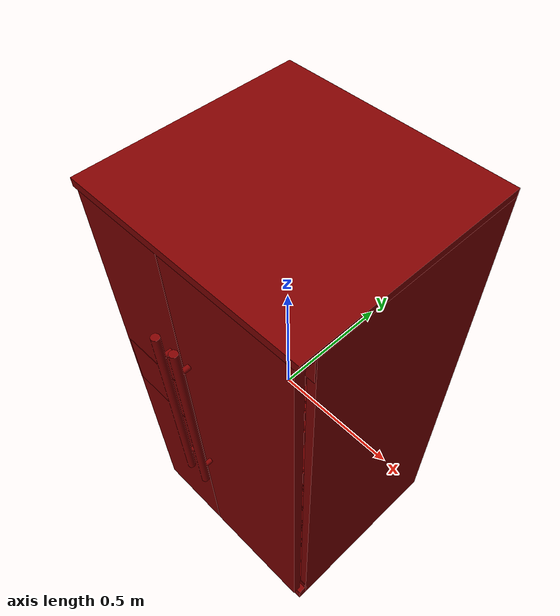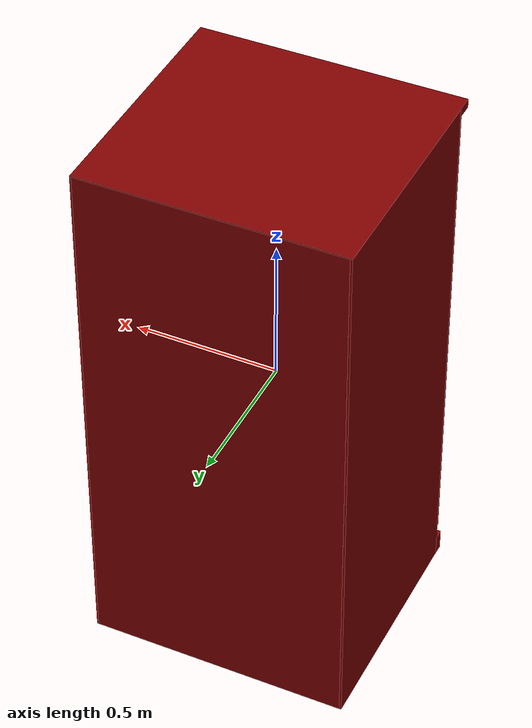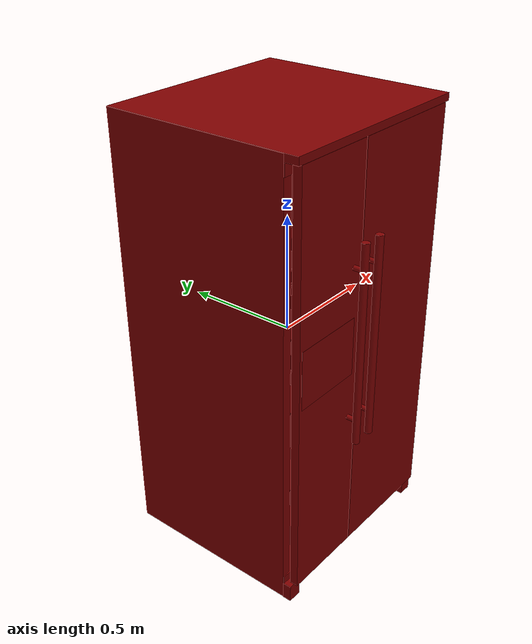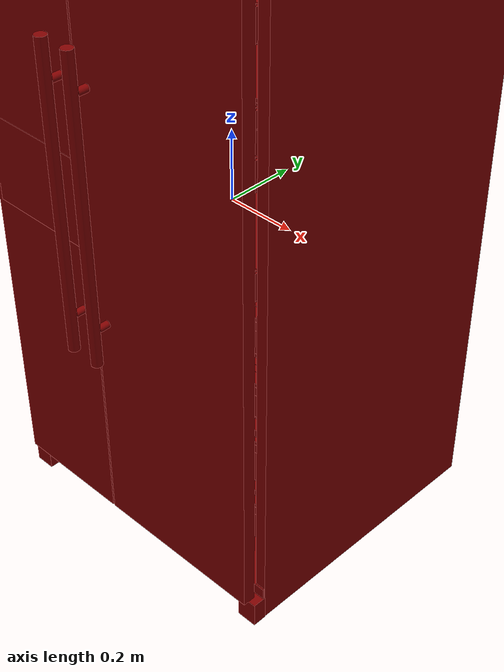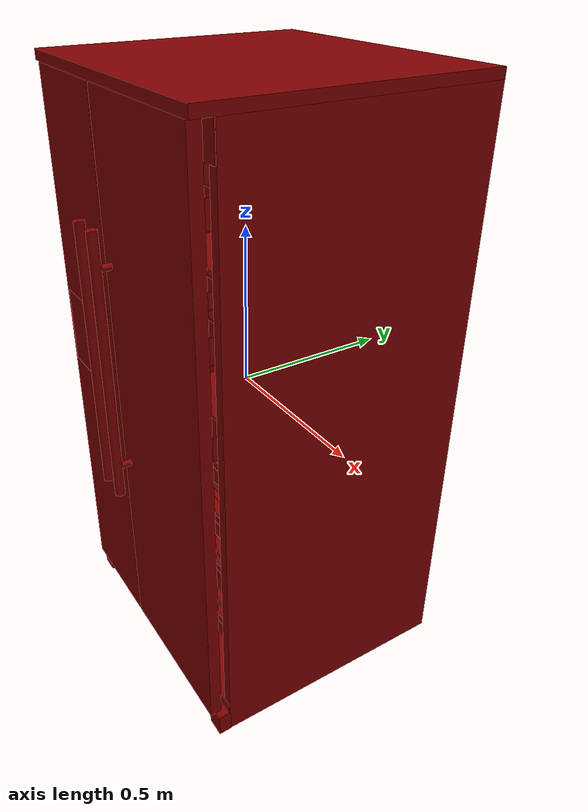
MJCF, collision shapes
<?xml version='1.0' encoding='UTF-8'?>
<mujoco model="model">
  <option timestep="0.002" gravity="0.0 0.0 -9.81"/>
  <compiler angle="radian"/>
  <asset>
    <mesh file="visuals/freezer_door.obj" name="fridge_door_vis"/>
    <mesh file="visuals/freezer_door_Clear.obj" name="fridge_door_Clear_vis"/>
    <mesh file="visuals/freezer_drawer0.obj" name="fridge_drawer0_vis"/>
    <mesh file="visuals/freezer_drawer1.obj" name="fridge_drawer1_vis"/>
    <mesh file="visuals/freezer_drawer2.obj" name="fridge_drawer2_vis"/>
    <mesh file="visuals/freezer_drawer3.obj" name="fridge_drawer3_vis"/>
    <mesh file="visuals/fridge_door.obj" name="freezer_door_vis"/>
    <mesh file="visuals/fridge_door_Clear.obj" name="freezer_door_Clear_vis"/>
    <mesh file="visuals/Body001.obj" name="Body001_vis"/>
    <mesh file="visuals/Body001_Clear.obj" name="Body001_Clear_vis"/>
    <texture file="visuals/T_BC001.png" name="Body001_material" type="2d"/>
    <material name="Body001_material" rgba="1 1 1 1.0" texture="Body001_material" shininess="0.7228040099143982" specular="0.3103448502657381"/>
    <texture file="visuals/T_BC001.png" name="fridge_door_material" type="2d"/>
    <material name="fridge_door_material" rgba="1 1 1 1.0" texture="fridge_door_material" shininess="0.7228040099143982" specular="0.3103448502657381"/>
    <material name="fridge_door_Clear_material" rgba="0.6930067539215088 0.6930026412010193 0.717366099357605 0.699999988079071" shininess="0.5" specular="0.3103448502657381"/>
    <texture file="visuals/T_BC001.png" name="fridge_drawer0_material" type="2d"/>
    <material name="fridge_drawer0_material" rgba="1 1 1 1.0" texture="fridge_drawer0_material" shininess="0.7228040099143982" specular="0.3103448502657381"/>
    <texture file="visuals/T_BC001.png" name="fridge_drawer1_material" type="2d"/>
    <material name="fridge_drawer1_material" rgba="1 1 1 1.0" texture="fridge_drawer1_material" shininess="0.7228040099143982" specular="0.3103448502657381"/>
    <texture file="visuals/T_BC001.png" name="fridge_drawer2_material" type="2d"/>
    <material name="fridge_drawer2_material" rgba="1 1 1 1.0" texture="fridge_drawer2_material" shininess="0.7228040099143982" specular="0.3103448502657381"/>
    <texture file="visuals/T_BC001.png" name="fridge_drawer3_material" type="2d"/>
    <material name="fridge_drawer3_material" rgba="1 1 1 1.0" texture="fridge_drawer3_material" shininess="0.7228040099143982" specular="0.3103448502657381"/>
    <texture file="visuals/T_BC001.png" name="freezer_door_material" type="2d"/>
    <material name="freezer_door_material" rgba="1 1 1 1.0" texture="freezer_door_material" shininess="0.7228040099143982" specular="0.3103448502657381"/>
    <material name="freezer_door_Clear_material" rgba="0.6930067539215088 0.6930026412010193 0.717366099357605 0.699999988079071" shininess="0.5" specular="0.3103448502657381"/>
    <material name="Body001_Clear_material" rgba="0.6930067539215088 0.6930026412010193 0.717366099357605 0.699999988079071" shininess="0.5" specular="0.3103448502657381"/>
  </asset>
  <default>
    <default class="visual">
      <geom conaffinity="0" contype="0" group="1" type="mesh"/>
    </default>
    <default class="collision">
      <geom group="0" rgba="0.5 0 0 0.5"/>
    </default>
    <default class="spawn">
      <geom group="0" rgba="1 1 1 0.5" contype="0" conaffinity="0"/>
      <site group="0" rgba="1 1 1 0.5"/>
    </default>
    <default class="region">
      <geom group="1" conaffinity="0" contype="0" rgba="0 1 0 0"/>
    </default>
  </default>
  <worldbody>
    <body>
      <body name="object">
        <geom mesh="Body001_vis" type="mesh" solimp="0.998 0.998 0.001" solref="0.001 1" friction="0.95 0.3 0.1" class="visual" material="Body001_material"/>
        <geom class="collision" type="box" pos="0.18959122896194458 0.05818253755569458 0.8799152970314026" size="0.2595243453979492 0.3990790545940399 0.05621635541319847" quat="1.0 0.0 0.0 0.0"/>
        <geom class="collision" type="box" pos="0.0009982611518353224 0.44190189242362976 0.00017643740284256637" size="0.44811761379241943 0.01804446615278721 0.9475670456886292" quat="1.0 0.0 0.0 0.0"/>
        <geom class="collision" type="box" pos="0.4390265643596649 0.058436278253793716 0.00017643740284256637" size="0.0159467700868845 0.40140703320503235 0.9475670456886292" quat="1.0 0.0 0.0 0.0"/>
        <geom class="collision" type="box" pos="-0.4349925220012665 0.058436278253793716 0.00017643740284256637" size="0.01999860256910324 0.40132734179496765 0.9475670456886292" quat="1.0 0.0 0.0 0.0"/>
        <geom class="collision" type="box" pos="2.7887028409168124e-05 0.02747405506670475 0.9345158338546753" size="0.4549593925476074 0.42980894446372986 0.0151698412373662" quat="1.0 0.0 0.0 0.0"/>
        <geom class="collision" type="box" pos="-0.07548540085554123 0.05183691903948784 -0.006091429386287928" size="0.024131251499056816 0.3987886309623718 0.9200621247291565" quat="1.0 0.0 0.0 0.0"/>
        <geom class="collision" type="box" pos="-0.2629220485687256 0.09088116884231567 -0.5183898210525513" size="0.173197403550148 0.35974442958831787 0.004941131919622421" quat="1.0 0.0 0.0 0.0"/>
        <geom class="collision" type="box" pos="0.18642672896385193 0.1124727874994278 -0.21493640542030334" size="0.24038416147232056 0.2969996929168701 0.010787518694996834" quat="1.0 0.0 0.0 0.0"/>
        <geom class="collision" type="box" pos="0.18693335354328156 0.07380534708499908 -0.4124906063079834" size="0.24089078605175018 0.3356671631336212 0.011015924625098705" quat="1.0 0.0 0.0 0.0"/>
        <geom class="collision" type="box" pos="0.18693335354328156 0.07380534708499908 -0.6208384037017822" size="0.24089078605175018 0.3356671631336212 0.009156123735010624" quat="1.0 0.0 0.0 0.0"/>
        <geom class="collision" type="box" pos="0.41454946994781494 0.07198478281497955 0.008693575859069824" size="0.009805545210838318 0.2760608196258545 0.005919968243688345" quat="1.0 0.0 0.0 0.0"/>
        <geom class="collision" type="box" pos="-0.04574844613671303 0.07198478281497955 0.008693575859069824" size="0.009805545210838318 0.2760608196258545 0.005919968243688345" quat="1.0 0.0 0.0 0.0"/>
        <geom class="collision" type="box" pos="0.41454946994781494 0.07198478281497955 0.49186912178993225" size="0.009805545210838318 0.2760608196258545 0.005919968243688345" quat="1.0 0.0 0.0 0.0"/>
        <geom class="collision" type="box" pos="-0.04574844613671303 0.07198478281497955 0.49186912178993225" size="0.009805545210838318 0.2760608196258545 0.005919968243688345" quat="1.0 0.0 0.0 0.0"/>
        <geom class="collision" type="box" pos="-0.41330641508102417 0.07198478281497955 0.49315911531448364" size="0.009805545210838318 0.2760608196258545 0.005919968243688345" quat="1.0 0.0 0.0 0.0"/>
        <geom class="collision" type="box" pos="-0.10852186381816864 0.07198478281497955 0.49315911531448364" size="0.009805545210838318 0.2760608196258545 0.005919968243688345" quat="1.0 0.0 0.0 0.0"/>
        <geom class="collision" type="box" pos="-0.41330641508102417 0.07198478281497955 0.1717570573091507" size="0.009805545210838318 0.2760608196258545 0.005919968243688345" quat="1.0 0.0 0.0 0.0"/>
        <geom class="collision" type="box" pos="-0.10852186381816864 0.07198478281497955 0.1717570573091507" size="0.009805545210838318 0.2760608196258545 0.005919968243688345" quat="1.0 0.0 0.0 0.0"/>
        <geom class="collision" type="box" pos="-0.2563979923725128 0.05500462278723717 0.894343912601471" size="0.19848524034023285 0.4022783935070038 0.023743778467178345" quat="1.0 0.0 0.0 0.0"/>
        <geom class="collision" type="box" pos="0.1960643231868744 0.055109333246946335 0.8699206709861755" size="0.25682929158210754 0.4021736681461334 0.04816699028015137" quat="1.0 0.0 0.0 0.0"/>
        <geom class="collision" type="box" pos="0.00016309466445818543 0.05516565591096878 -0.8944394588470459" size="0.4533739984035492 0.4021173417568207 0.05517515540122986" quat="1.0 0.0 0.0 0.0"/>
        <geom class="collision" type="box" pos="0.4252990186214447 -0.3605630397796631 -0.9116199612617493" size="0.02970121242105961 0.020007407292723656 0.03795410320162773" quat="1.0 0.0 0.0 0.0"/>
        <geom class="collision" type="box" pos="-0.4254184067249298 -0.36056995391845703 -0.9115289449691772" size="0.02944832667708397 0.020014313980937004 0.03804513439536095" quat="1.0 0.0 0.0 0.0"/>
        <geom class="collision" type="box" pos="-0.2619285583496094 0.06612826883792877 0.5069118142127991" size="0.16020195186138153 0.333356648683548 0.004941221792250872" quat="1.0 0.0 0.0 0.0"/>
        <geom class="collision" type="box" pos="0.18921372294425964 0.06817471981048584 0.022501319646835327" size="0.23514129221439362 0.3253078758716583 0.005285938736051321" quat="1.0 0.0 0.0 0.0"/>
        <geom class="collision" type="box" pos="-0.2616431713104248 0.06542140245437622 0.18713003396987915" size="0.15750616788864136 0.3326497972011566 0.004941180814057589" quat="1.0 0.0 0.0 0.0"/>
        <geom class="collision" type="box" pos="-0.2616431713104248 0.06542140245437622 -0.14009101688861847" size="0.15750616788864136 0.3326497972011566 0.004941110964864492" quat="1.0 0.0 0.0 0.0"/>
        <geom class="collision" type="box" pos="0.18476395308971405 0.06817471981048584 0.507149875164032" size="0.23851679265499115 0.3253078758716583 0.005285946186631918" quat="1.0 0.0 0.0 0.0"/>
        <geom class="collision" type="box" pos="-0.41330641508102417 0.07198478281497955 -0.15509168803691864" size="0.009805545210838318 0.2760608196258545 0.005919968243688345" quat="1.0 0.0 0.0 0.0"/>
        <geom class="collision" type="box" pos="-0.10852186381816864 0.07198478281497955 -0.15509168803691864" size="0.009805545210838318 0.2760608196258545 0.005919968243688345" quat="1.0 0.0 0.0 0.0"/>
        <geom class="collision" type="box" pos="-0.41330641508102417 0.07198478281497955 -0.5307405591011047" size="0.009805545210838318 0.2760608196258545 0.005919968243688345" quat="1.0 0.0 0.0 0.0"/>
        <geom class="collision" type="box" pos="-0.10852186381816864 0.07198478281497955 -0.5307405591011047" size="0.009805545210838318 0.2760608196258545 0.005919968243688345" quat="1.0 0.0 0.0 0.0"/>
        <body name="fridge_door">
          <joint axis="0.0 0.0 1.0" pos="0.42672601342201233 -0.37495362758636475 0.0996796116232872" limited="true" name="fridge_door_joint" range="0.0 1.5707963267948966" type="hinge" damping="1" frictionloss="1" armature=".01" stiffness="0.05"/>
          <geom mesh="fridge_door_vis" type="mesh" solimp="0.998 0.998 0.001" solref="0.001 1" friction="0.95 0.3 0.1" class="visual" material="fridge_door_material"/>
          <geom class="collision" type="box" pos="0.19549089670181274 -0.31043457984924316 0.023607749491930008" size="0.16924677789211273 0.03708387166261673 0.0022371350787580013" quat="1.0 0.0 0.0 0.0"/>
          <geom class="collision" type="box" pos="0.19549089670181274 -0.27558109164237976 0.06264669448137283" size="0.16924677789211273 0.002237121807411313 0.0380849726498127" quat="1.0 0.0 0.0 0.0"/>
          <geom class="collision" type="box" pos="0.19549089670181274 -0.3451758623123169 0.06264668703079224" size="0.16924677789211273 0.0022371369414031506 0.0380849726498127" quat="1.0 0.0 0.0 0.0"/>
          <geom class="collision" type="box" pos="0.026393001899123192 -0.31005650758743286 0.06264669448137283" size="0.00223718723282218 0.03683596849441528 0.038084980100393295" quat="1.0 0.0 0.0 0.0"/>
          <geom class="collision" type="box" pos="0.3627909719944 -0.31005650758743286 0.06264669448137283" size="0.0022371828090399504 0.03683596849441528 0.038084980100393295" quat="1.0 0.0 0.0 0.0"/>
          <geom class="collision" type="box" pos="0.19549089670181274 -0.31043457984924316 0.31353986263275146" size="0.16924677789211273 0.03708387166261673 0.002237152075394988" quat="1.0 0.0 0.0 0.0"/>
          <geom class="collision" type="box" pos="0.19549089670181274 -0.27558109164237976 0.3525788187980652" size="0.16924677789211273 0.002237121807411313 0.0380849726498127" quat="1.0 0.0 0.0 0.0"/>
          <geom class="collision" type="box" pos="0.19549089670181274 -0.3451758623123169 0.3525788187980652" size="0.16924677789211273 0.0022371369414031506 0.0380849726498127" quat="1.0 0.0 0.0 0.0"/>
          <geom class="collision" type="box" pos="0.026393001899123192 -0.31005650758743286 0.3525788187980652" size="0.00223718723282218 0.03683596849441528 0.038085002452135086" quat="1.0 0.0 0.0 0.0"/>
          <geom class="collision" type="box" pos="0.3627909719944 -0.31005650758743286 0.3525788187980652" size="0.0022371828090399504 0.03683596849441528 0.038085002452135086" quat="1.0 0.0 0.0 0.0"/>
          <geom class="collision" type="box" pos="0.19549089670181274 -0.31043457984924316 0.6533429622650146" size="0.16924677789211273 0.03708387166261673 0.002237152075394988" quat="1.0 0.0 0.0 0.0"/>
          <geom class="collision" type="box" pos="0.19549089670181274 -0.27558109164237976 0.6923818588256836" size="0.16924677789211273 0.002237121807411313 0.03808498755097389" quat="1.0 0.0 0.0 0.0"/>
          <geom class="collision" type="box" pos="0.19549089670181274 -0.3451758623123169 0.6923818588256836" size="0.16924677789211273 0.0022371369414031506 0.03808498755097389" quat="1.0 0.0 0.0 0.0"/>
          <geom class="collision" type="box" pos="0.026393001899123192 -0.31005650758743286 0.6923818588256836" size="0.00223718723282218 0.03683596849441528 0.03808498755097389" quat="1.0 0.0 0.0 0.0"/>
          <geom class="collision" type="box" pos="0.3627909719944 -0.31005650758743286 0.6923818588256836" size="0.0022371828090399504 0.03683596849441528 0.03808498755097389" quat="1.0 0.0 0.0 0.0"/>
          <geom class="collision" type="box" pos="0.19549089670181274 -0.31043457984924316 0.4631336033344269" size="0.16924677789211273 0.03708387166261673 0.0022371369414031506" quat="1.0 0.0 0.0 0.0"/>
          <geom class="collision" type="box" pos="0.19549088180065155 -0.27558109164237976 0.4855217933654785" size="0.16924677789211273 0.002237121807411313 0.021434303373098373" quat="1.0 0.0 0.0 0.0"/>
          <geom class="collision" type="box" pos="0.19549089670181274 -0.3451758623123169 0.4855217933654785" size="0.16924677789211273 0.0022371369414031506 0.021434303373098373" quat="1.0 0.0 0.0 0.0"/>
          <geom class="collision" type="box" pos="0.026393000036478043 -0.31005650758743286 0.4855217933654785" size="0.00223718723282218 0.03683596849441528 0.021434303373098373" quat="1.0 0.0 0.0 0.0"/>
          <geom class="collision" type="box" pos="0.3627909719944 -0.31005650758743286 0.4855217933654785" size="0.0022371828090399504 0.03683596849441528 0.021434303373098373" quat="1.0 0.0 0.0 0.0"/>
          <geom class="collision" type="cylinder" pos="-0.037368711084127426 -0.42110177874565125 0.45060014724731445" size="0.010461447760462761 0.020187530666589737" quat="0.7071068286895752 0.7071067690849304 0.0 0.0" name="fridge_door_handle_1"/>
          <geom class="collision" type="cylinder" pos="-0.03658199682831764 -0.42110177874565125 -0.1980651170015335" size="0.010461447760462761 0.020187530666589737" quat="0.7071068286895752 0.7071067690849304 0.0 0.0" name="fridge_door_handle_2"/>
          <geom class="collision" type="cylinder" pos="-0.036718107759952545 -0.444355309009552 0.1299496442079544" size="0.015873899683356285 0.43129029870033264" quat="1.0 0.0 0.0 0.0" name="fridge_door_handle_main"/>
          <geom class="collision" type="box" pos="0.1808941811323166 -0.3823644518852234 0.025255605578422546" size="0.2568225562572479 0.018424075096845627 0.8917039632797241" quat="1.0 0.0 0.0 0.0" name="fridge_door_main"/>
          <body name="fridge_door_Clear">
            <geom mesh="fridge_door_Clear_vis" type="mesh" solimp="0.998 0.998 0.001" solref="0.001 1" friction="0.95 0.3 0.1" class="visual" material="fridge_door_Clear_material"/>
            <geom class="collision" type="box" pos="0.19549089670181274 -0.31043457984924316 0.023607749491930008" size="0.16924677789211273 0.03708387166261673 0.0022371350787580013" quat="1.0 0.0 0.0 0.0"/>
            <geom class="collision" type="box" pos="0.19549089670181274 -0.27558109164237976 0.06264669448137283" size="0.16924677789211273 0.002237121807411313 0.0380849726498127" quat="1.0 0.0 0.0 0.0"/>
            <geom class="collision" type="box" pos="0.19549089670181274 -0.3451758623123169 0.06264668703079224" size="0.16924677789211273 0.0022371369414031506 0.0380849726498127" quat="1.0 0.0 0.0 0.0"/>
            <geom class="collision" type="box" pos="0.026393001899123192 -0.31005650758743286 0.06264669448137283" size="0.00223718723282218 0.03683596849441528 0.038084980100393295" quat="1.0 0.0 0.0 0.0"/>
            <geom class="collision" type="box" pos="0.3627909719944 -0.31005650758743286 0.06264669448137283" size="0.0022371828090399504 0.03683596849441528 0.038084980100393295" quat="1.0 0.0 0.0 0.0"/>
            <geom class="collision" type="box" pos="0.19549089670181274 -0.31043457984924316 0.31353986263275146" size="0.16924677789211273 0.03708387166261673 0.002237152075394988" quat="1.0 0.0 0.0 0.0"/>
            <geom class="collision" type="box" pos="0.19549089670181274 -0.27558109164237976 0.3525788187980652" size="0.16924677789211273 0.002237121807411313 0.0380849726498127" quat="1.0 0.0 0.0 0.0"/>
            <geom class="collision" type="box" pos="0.19549089670181274 -0.3451758623123169 0.3525788187980652" size="0.16924677789211273 0.0022371369414031506 0.0380849726498127" quat="1.0 0.0 0.0 0.0"/>
            <geom class="collision" type="box" pos="0.026393001899123192 -0.31005650758743286 0.3525788187980652" size="0.00223718723282218 0.03683596849441528 0.038085002452135086" quat="1.0 0.0 0.0 0.0"/>
            <geom class="collision" type="box" pos="0.3627909719944 -0.31005650758743286 0.3525788187980652" size="0.0022371828090399504 0.03683596849441528 0.038085002452135086" quat="1.0 0.0 0.0 0.0"/>
            <geom class="collision" type="box" pos="0.19549089670181274 -0.31043457984924316 0.6533429622650146" size="0.16924677789211273 0.03708387166261673 0.002237152075394988" quat="1.0 0.0 0.0 0.0"/>
            <geom class="collision" type="box" pos="0.19549089670181274 -0.27558109164237976 0.6923818588256836" size="0.16924677789211273 0.002237121807411313 0.03808498755097389" quat="1.0 0.0 0.0 0.0"/>
            <geom class="collision" type="box" pos="0.19549089670181274 -0.3451758623123169 0.6923818588256836" size="0.16924677789211273 0.0022371369414031506 0.03808498755097389" quat="1.0 0.0 0.0 0.0"/>
            <geom class="collision" type="box" pos="0.026393001899123192 -0.31005650758743286 0.6923818588256836" size="0.00223718723282218 0.03683596849441528 0.03808498755097389" quat="1.0 0.0 0.0 0.0"/>
            <geom class="collision" type="box" pos="0.3627909719944 -0.31005650758743286 0.6923818588256836" size="0.0022371828090399504 0.03683596849441528 0.03808498755097389" quat="1.0 0.0 0.0 0.0"/>
            <geom class="collision" type="box" pos="0.19549089670181274 -0.31043457984924316 0.4631336033344269" size="0.16924677789211273 0.03708387166261673 0.0022371369414031506" quat="1.0 0.0 0.0 0.0"/>
            <geom class="collision" type="box" pos="0.19549088180065155 -0.27558109164237976 0.4855217933654785" size="0.16924677789211273 0.002237121807411313 0.021434303373098373" quat="1.0 0.0 0.0 0.0"/>
            <geom class="collision" type="box" pos="0.19549089670181274 -0.3451758623123169 0.4855217933654785" size="0.16924677789211273 0.0022371369414031506 0.021434303373098373" quat="1.0 0.0 0.0 0.0"/>
            <geom class="collision" type="box" pos="0.026393000036478043 -0.31005650758743286 0.4855217933654785" size="0.00223718723282218 0.03683596849441528 0.021434303373098373" quat="1.0 0.0 0.0 0.0"/>
            <geom class="collision" type="box" pos="0.3627909719944 -0.31005650758743286 0.4855217933654785" size="0.0022371828090399504 0.03683596849441528 0.021434303373098373" quat="1.0 0.0 0.0 0.0"/>
          </body>
        </body>
        <body name="fridge_drawer0">
          <geom class="region" name="reg_fridge_drawer0" type="box" pos="0.17921103723347187 0.0013342499732971191 -0.71849125623703" size="0.18660696952044964 0.2071530351638794 0.05728591775894165"/>
          <joint axis="0.0 -1.0 0.0" pos="0.17909014225006104 -0.01393619179725647 -0.7452696561813354" limited="true" name="fridge_drawer0_joint" range="0.0 0.4" type="slide" damping="1" frictionloss="1" armature=".01" stiffness="0.05"/>
          <geom mesh="fridge_drawer0_vis" type="mesh" solimp="0.998 0.998 0.001" solref="0.001 1" friction="0.95 0.3 0.1" class="visual" material="fridge_drawer0_material"/>
          <geom class="collision" type="box" pos="0.38147395849227905 -0.0050514377653598785 -0.7437748312950134" size="0.010397781617939472 0.22012411057949066 0.08520442992448807" quat="1.0 0.0 0.0 0.0"/>
          <geom class="collision" type="box" pos="0.1771976798772812 0.22568081319332123 -0.7437748312950134" size="0.21097353100776672 0.011272139847278595 0.08520446717739105" quat="1.0 0.0 0.0 0.0"/>
          <geom class="collision" type="box" pos="0.17719770967960358 -0.22164975106716156 -0.7437748312950134" size="0.21097365021705627 0.011272133328020573 0.08520450443029404" quat="1.0 0.0 0.0 0.0"/>
          <geom class="collision" type="box" pos="-0.023293644189834595 -0.0050514377653598785 -0.7437748312950134" size="0.010397703386843204 0.2201247215270996 0.0852046012878418" quat="1.0 0.0 0.0 0.0"/>
          <geom class="collision" type="box" pos="0.17618638277053833 -0.005051452666521072 -0.8070219159126282" size="0.19473035633563995 0.22012488543987274 0.025195026770234108" quat="1.0 0.0 0.0 0.0"/>
          <geom class="collision" type="box" pos="0.17867150902748108 -0.24769547581672668 -0.6643404960632324" size="0.2098865509033203 0.01721375808119774 0.005844409577548504" quat="1.0 0.0 0.0 0.0"/>
          <geom class="collision" type="box" pos="0.17867150902748108 -0.2608986496925354 -0.6827970147132874" size="0.2098865509033203 0.004010598175227642 0.013608235865831375" quat="1.0 0.0 0.0 0.0"/>
        </body>
        <body name="fridge_drawer1">
          <geom class="region" name="reg_fridge_drawer1" type="box" pos="0.17921103723347187 0.0013342499732971191 -0.4984947741031647" size="0.18660696952044964 0.2071530351638794 0.05668364262580872"/>
          <joint axis="0.0 -1.0 0.0" pos="0.17909014225006104 -0.013936210423707962 -0.5233203172683716" limited="true" name="fridge_drawer1_joint" range="0.0 0.4" type="slide" damping="1" frictionloss="1" armature=".01" stiffness="0.05"/>
          <geom mesh="fridge_drawer1_vis" type="mesh" solimp="0.998 0.998 0.001" solref="0.001 1" friction="0.95 0.3 0.1" class="visual" material="fridge_drawer1_material"/>
          <geom class="collision" type="box" pos="0.1782468557357788 -0.000668700784444809 -0.58506840467453" size="0.21282710134983063 0.2367130070924759 0.025190912187099457" quat="1.0 0.0 0.0 0.0"/>
          <geom class="collision" type="box" pos="-0.023649487644433975 -0.0050514377653598785 -0.5222383737564087" size="0.010753663256764412 0.2201247662305832 0.08520456403493881" quat="1.0 0.0 0.0 0.0"/>
          <geom class="collision" type="box" pos="0.1771976798772812 -0.2244717925786972 -0.5222383737564087" size="0.2109738439321518 0.014094165526330471 0.08520461618900299" quat="1.0 0.0 0.0 0.0"/>
          <geom class="collision" type="box" pos="0.1771976798772812 0.22609974443912506 -0.5222383737564087" size="0.21097397804260254 0.011691168881952763 0.08520469814538956" quat="1.0 0.0 0.0 0.0"/>
          <geom class="collision" type="box" pos="0.38231387734413147 -0.0050514377653598785 -0.5222383737564087" size="0.011237772181630135 0.22012539207935333 0.08520473539829254" quat="1.0 0.0 0.0 0.0"/>
          <geom class="collision" type="box" pos="0.17867150902748108 -0.2608986496925354 -0.46080681681632996" size="0.2098865509033203 0.004010598175227642 0.013608235865831375" quat="1.0 0.0 0.0 0.0"/>
          <geom class="collision" type="box" pos="0.17867150902748108 -0.24769547581672668 -0.44235026836395264" size="0.2098865509033203 0.01721375808119774 0.005844409577548504" quat="1.0 0.0 0.0 0.0"/>
        </body>
        <body name="fridge_drawer2">
          <geom class="region" name="reg_fridge_drawer2" type="box" pos="0.17842020699754357 0.0013342499732971191 -0.3045685365796089" size="0.1855026700757444 0.2071530351638794 0.056198632180690766"/>
          <joint axis="0.0 -1.0 0.0" pos="0.17909014225006104 -0.01393619179725647 -0.3239293098449707" limited="true" name="fridge_drawer2_joint" range="0.0 0.4" type="slide" damping="1" frictionloss="1" armature=".01" stiffness="0.05"/>
          <geom mesh="fridge_drawer2_vis" type="mesh" solimp="0.998 0.998 0.001" solref="0.001 1" friction="0.95 0.3 0.1" class="visual" material="fridge_drawer2_material"/>
          <geom class="collision" type="box" pos="0.38029900193214417 -0.0023914948105812073 -0.31967470049858093" size="0.0119591373950243 0.22278499603271484 0.07342057675123215" quat="1.0 0.0 0.0 0.0"/>
          <geom class="collision" type="box" pos="0.17923715710639954 0.22592203319072723 -0.31967470049858093" size="0.21301332116127014 0.011544846929609776 0.07342061400413513" quat="1.0 0.0 0.0 0.0"/>
          <geom class="collision" type="box" pos="0.17923714220523834 -0.22353315353393555 -0.31967470049858093" size="0.2130134105682373 0.009566523134708405 0.0734206810593605" quat="1.0 0.0 0.0 0.0"/>
          <geom class="collision" type="box" pos="-0.02303919568657875 -0.002993490546941757 -0.31967470049858093" size="0.011443601921200752 0.22218362987041473 0.07342073321342468" quat="1.0 0.0 0.0 0.0"/>
          <geom class="collision" type="box" pos="0.1792045384645462 0.0023509636521339417 -0.3826092481613159" size="0.2127421498298645 0.2342577427625656 0.017658410593867302" quat="1.0 0.0 0.0 0.0"/>
          <geom class="collision" type="box" pos="0.17867150902748108 -0.24769547581672668 -0.2522381544113159" size="0.2098865509033203 0.01721375808119774 0.005844409577548504" quat="1.0 0.0 0.0 0.0"/>
          <geom class="collision" type="box" pos="0.17867150902748108 -0.2608986496925354 -0.27069470286369324" size="0.2098865509033203 0.004010598175227642 0.013608235865831375" quat="1.0 0.0 0.0 0.0"/>
        </body>
        <body name="fridge_drawer3">
          <geom class="region" name="reg_fridge_drawer3" type="box" pos="0.17921103723347187 0.0013342499732971191 -0.1076803058385849" size="0.18660696952044964 0.2071530351638794 0.058182952761650086"/>
          <joint axis="0.0 -1.0 0.0" pos="0.17909014225006104 -0.01393619179725647 -0.12423187494277954" limited="true" name="fridge_drawer3_joint" range="0.0 0.4" type="slide" damping="1" frictionloss="1" armature=".01" stiffness="0.05"/>
          <geom mesh="fridge_drawer3_vis" type="mesh" solimp="0.998 0.998 0.001" solref="0.001 1" friction="0.95 0.3 0.1" class="visual" material="fridge_drawer3_material"/>
          <geom class="collision" type="box" pos="0.1790924072265625 0.0019851024262607098 -0.18598416447639465" size="0.21245449781417847 0.23490698635578156 0.015601015649735928" quat="1.0 0.0 0.0 0.0"/>
          <geom class="collision" type="box" pos="-0.023293688893318176 -0.0018224194645881653 -0.11775030195713043" size="0.010397717356681824 0.223354771733284 0.07197783142328262" quat="1.0 0.0 0.0 0.0"/>
          <geom class="collision" type="box" pos="0.17909018695354462 -0.22164973616600037 -0.11775030195713043" size="0.212781623005867 0.011272162199020386 0.0719778835773468" quat="1.0 0.0 0.0 0.0"/>
          <geom class="collision" type="box" pos="0.17909006774425507 0.22568081319332123 -0.11775030940771103" size="0.21278147399425507 0.011272166855633259 0.07197794318199158" quat="1.0 0.0 0.0 0.0"/>
          <geom class="collision" type="box" pos="0.38147395849227905 -0.0018224343657493591 -0.11775030195713043" size="0.010397804901003838 0.22335533797740936 0.07197800278663635" quat="1.0 0.0 0.0 0.0"/>
          <geom class="collision" type="box" pos="0.17867150902748108 -0.24769547581672668 -0.05285760015249252" size="0.2098865509033203 0.01721375808119774 0.005844409577548504" quat="1.0 0.0 0.0 0.0"/>
          <geom class="collision" type="box" pos="0.17867150902748108 -0.2608986496925354 -0.07131413370370865" size="0.2098865509033203 0.004010598175227642 0.013608235865831375" quat="1.0 0.0 0.0 0.0"/>
        </body>
        <body name="freezer_door">
          <joint axis="0.0 0.0 -1.0" pos="-0.42675527930259705 -0.37689897418022156 0.09781890362501144" limited="true" name="freezer_door_joint" range="0.0 1.5707963267948966" type="hinge" damping="1" frictionloss="1" armature=".01" stiffness="0.05"/>
          <geom mesh="freezer_door_vis" type="mesh" solimp="0.998 0.998 0.001" solref="0.001 1" friction="0.95 0.3 0.1" class="visual" material="freezer_door_material"/>
          <geom class="collision" type="box" pos="-0.2667202651500702 -0.31501370668411255 0.5385845899581909" size="0.14274582266807556 0.032504741102457047 0.0022371821105480194" quat="1.0 0.0 0.0 0.0"/>
          <geom class="collision" type="box" pos="-0.2667202651500702 -0.28473934531211853 0.5720432996749878" size="0.14274582266807556 0.002237152075394988 0.03250475972890854" quat="1.0 0.0 0.0 0.0"/>
          <geom class="collision" type="box" pos="-0.2667202651500702 -0.3451758623123169 0.5720432996749878" size="0.14274582266807556 0.0022371369414031506 0.03250475972890854" quat="1.0 0.0 0.0 0.0"/>
          <geom class="collision" type="box" pos="-0.4093172252178192 -0.31463563442230225 0.5720432996749878" size="0.002237200504168868 0.0322568453848362 0.03250475972890854" quat="1.0 0.0 0.0 0.0"/>
          <geom class="collision" type="box" pos="-0.12592120468616486 -0.31463563442230225 0.5720432996749878" size="0.0022371828090399504 0.0322568453848362 0.03250475972890854" quat="1.0 0.0 0.0 0.0"/>
          <geom class="collision" type="box" pos="-0.12592120468616486 -0.31463563442230225 0.35271555185317993" size="0.0022371828090399504 0.0322568453848362 0.03250477463006973" quat="1.0 0.0 0.0 0.0"/>
          <geom class="collision" type="box" pos="-0.4093172252178192 -0.31463563442230225 0.35271555185317993" size="0.002237200504168868 0.0322568453848362 0.03250477463006973" quat="1.0 0.0 0.0 0.0"/>
          <geom class="collision" type="box" pos="-0.2667202651500702 -0.3451758623123169 0.35271555185317993" size="0.14274582266807556 0.0022371369414031506 0.03250477463006973" quat="1.0 0.0 0.0 0.0"/>
          <geom class="collision" type="box" pos="-0.2667202651500702 -0.28473934531211853 0.35271555185317993" size="0.14274582266807556 0.002237152075394988 0.03250477463006973" quat="1.0 0.0 0.0 0.0"/>
          <geom class="collision" type="box" pos="-0.2667202651500702 -0.31501370668411255 0.31925681233406067" size="0.14274582266807556 0.032504741102457047 0.002237152075394988" quat="1.0 0.0 0.0 0.0"/>
          <geom class="collision" type="box" pos="-0.12592120468616486 -0.31463563442230225 0.10848008096218109" size="0.0022371828090399504 0.0322568453848362 0.03250475600361824" quat="1.0 0.0 0.0 0.0"/>
          <geom class="collision" type="box" pos="-0.4093172252178192 -0.31463563442230225 0.10848008096218109" size="0.002237200504168868 0.0322568453848362 0.03250475600361824" quat="1.0 0.0 0.0 0.0"/>
          <geom class="collision" type="box" pos="-0.2667202651500702 -0.3451758623123169 0.10848008096218109" size="0.14274582266807556 0.0022371369414031506 0.03250475600361824" quat="1.0 0.0 0.0 0.0"/>
          <geom class="collision" type="box" pos="-0.2667202651500702 -0.28473934531211853 0.10848008096218109" size="0.14274582266807556 0.002237152075394988 0.03250475600361824" quat="1.0 0.0 0.0 0.0"/>
          <geom class="collision" type="box" pos="-0.2667202651500702 -0.31501370668411255 0.07502136379480362" size="0.14274582266807556 0.032504741102457047 0.0022371294908225536" quat="1.0 0.0 0.0 0.0"/>
          <geom class="collision" type="box" pos="-0.2667202651500702 -0.28473934531211853 0.45979422330856323" size="0.14274582266807556 0.002237152075394988 0.019442621618509293" quat="1.0 0.0 0.0 0.0"/>
          <geom class="collision" type="box" pos="-0.2667202651500702 -0.3451758623123169 0.45979422330856323" size="0.14274582266807556 0.0022371369414031506 0.019442621618509293" quat="1.0 0.0 0.0 0.0"/>
          <geom class="collision" type="box" pos="-0.4093172252178192 -0.31463563442230225 0.45979422330856323" size="0.002237200504168868 0.0322568453848362 0.019442621618509293" quat="1.0 0.0 0.0 0.0"/>
          <geom class="collision" type="box" pos="-0.12592120468616486 -0.31463563442230225 0.45979422330856323" size="0.0022371828090399504 0.0322568453848362 0.019442621618509293" quat="1.0 0.0 0.0 0.0"/>
          <geom class="collision" type="box" pos="-0.26776042580604553 -0.3837219476699829 0.11726395040750504" size="0.15611831843852997 0.018424078822135925 0.12318645417690277" quat="1.0 0.0 0.0 0.0"/>
          <geom class="collision" type="cylinder" pos="-0.12559297680854797 -0.42110177874565125 0.45060014724731445" size="0.01046145148575306 0.020187530666589737" quat="0.7071068286895752 0.7071067690849304 0.0 0.0" name="freezer_door_handle_1"/>
          <geom class="collision" type="cylinder" pos="-0.12559297680854797 -0.42110177874565125 -0.1980651170015335" size="0.01046145148575306 0.020187530666589737" quat="0.7071068286895752 0.7071067690849304 0.0 0.0" name="freezer_door_handle_2"/>
          <geom class="collision" type="cylinder" pos="-0.12591570615768433 -0.44454118609428406 0.1299496442079544" size="0.015802860260009766 0.43129029870033264" quat="1.0 0.0 0.0 0.0" name="freezer_door_handle_main"/>
          <geom class="collision" type="box" pos="-0.2589595317840576 -0.3823644518852234 0.02525559812784195" size="0.17731812596321106 0.018424075096845627 0.8917039632797241" quat="1.0 0.0 0.0 0.0" name="freezer_door_main"/>
          <body name="freezer_door_Clear">
            <geom mesh="freezer_door_Clear_vis" type="mesh" solimp="0.998 0.998 0.001" solref="0.001 1" friction="0.95 0.3 0.1" class="visual" material="freezer_door_Clear_material"/>
            <geom class="collision" type="box" pos="-0.2667202651500702 -0.31501370668411255 0.5385845899581909" size="0.14274582266807556 0.032504741102457047 0.0022371821105480194" quat="1.0 0.0 0.0 0.0"/>
            <geom class="collision" type="box" pos="-0.2667202651500702 -0.28473934531211853 0.5720432996749878" size="0.14274582266807556 0.002237152075394988 0.03250475972890854" quat="1.0 0.0 0.0 0.0"/>
            <geom class="collision" type="box" pos="-0.2667202651500702 -0.3451758623123169 0.5720432996749878" size="0.14274582266807556 0.0022371369414031506 0.03250475972890854" quat="1.0 0.0 0.0 0.0"/>
            <geom class="collision" type="box" pos="-0.4093172252178192 -0.31463563442230225 0.5720432996749878" size="0.002237200504168868 0.0322568453848362 0.03250475972890854" quat="1.0 0.0 0.0 0.0"/>
            <geom class="collision" type="box" pos="-0.12592120468616486 -0.31463563442230225 0.5720432996749878" size="0.0022371828090399504 0.0322568453848362 0.03250475972890854" quat="1.0 0.0 0.0 0.0"/>
            <geom class="collision" type="box" pos="-0.12592120468616486 -0.31463563442230225 0.35271555185317993" size="0.0022371828090399504 0.0322568453848362 0.03250477463006973" quat="1.0 0.0 0.0 0.0"/>
            <geom class="collision" type="box" pos="-0.4093172252178192 -0.31463563442230225 0.35271555185317993" size="0.002237200504168868 0.0322568453848362 0.03250477463006973" quat="1.0 0.0 0.0 0.0"/>
            <geom class="collision" type="box" pos="-0.2667202651500702 -0.3451758623123169 0.35271555185317993" size="0.14274582266807556 0.0022371369414031506 0.03250477463006973" quat="1.0 0.0 0.0 0.0"/>
            <geom class="collision" type="box" pos="-0.2667202651500702 -0.28473934531211853 0.35271555185317993" size="0.14274582266807556 0.002237152075394988 0.03250477463006973" quat="1.0 0.0 0.0 0.0"/>
            <geom class="collision" type="box" pos="-0.2667202651500702 -0.31501370668411255 0.31925681233406067" size="0.14274582266807556 0.032504741102457047 0.002237152075394988" quat="1.0 0.0 0.0 0.0"/>
            <geom class="collision" type="box" pos="-0.12592120468616486 -0.31463563442230225 0.10848008096218109" size="0.0022371828090399504 0.0322568453848362 0.03250475600361824" quat="1.0 0.0 0.0 0.0"/>
            <geom class="collision" type="box" pos="-0.4093172252178192 -0.31463563442230225 0.10848008096218109" size="0.002237200504168868 0.0322568453848362 0.03250475600361824" quat="1.0 0.0 0.0 0.0"/>
            <geom class="collision" type="box" pos="-0.2667202651500702 -0.3451758623123169 0.10848008096218109" size="0.14274582266807556 0.0022371369414031506 0.03250475600361824" quat="1.0 0.0 0.0 0.0"/>
            <geom class="collision" type="box" pos="-0.2667202651500702 -0.28473934531211853 0.10848008096218109" size="0.14274582266807556 0.002237152075394988 0.03250475600361824" quat="1.0 0.0 0.0 0.0"/>
            <geom class="collision" type="box" pos="-0.2667202651500702 -0.31501370668411255 0.07502136379480362" size="0.14274582266807556 0.032504741102457047 0.0022371294908225536" quat="1.0 0.0 0.0 0.0"/>
            <geom class="collision" type="box" pos="-0.2667202651500702 -0.28473934531211853 0.45979422330856323" size="0.14274582266807556 0.002237152075394988 0.019442621618509293" quat="1.0 0.0 0.0 0.0"/>
            <geom class="collision" type="box" pos="-0.2667202651500702 -0.3451758623123169 0.45979422330856323" size="0.14274582266807556 0.0022371369414031506 0.019442621618509293" quat="1.0 0.0 0.0 0.0"/>
            <geom class="collision" type="box" pos="-0.4093172252178192 -0.31463563442230225 0.45979422330856323" size="0.002237200504168868 0.0322568453848362 0.019442621618509293" quat="1.0 0.0 0.0 0.0"/>
            <geom class="collision" type="box" pos="-0.12592120468616486 -0.31463563442230225 0.45979422330856323" size="0.0022371828090399504 0.0322568453848362 0.019442621618509293" quat="1.0 0.0 0.0 0.0"/>
          </body>
        </body>
        <body name="Body001_Clear">
          <geom mesh="Body001_Clear_vis" type="mesh" solimp="0.998 0.998 0.001" solref="0.001 1" friction="0.95 0.3 0.1" class="visual" material="Body001_Clear_material"/>
          <geom class="collision" type="box" pos="-0.2629220485687256 0.09088116884231567 -0.5183898210525513" size="0.173197403550148 0.35974442958831787 0.004941131919622421" quat="1.0 0.0 0.0 0.0"/>
          <geom class="collision" type="box" pos="-0.2619285583496094 0.06612826883792877 0.5069118142127991" size="0.16020195186138153 0.333356648683548 0.004941221792250872" quat="1.0 0.0 0.0 0.0"/>
          <geom class="collision" type="box" pos="-0.2616431713104248 0.06542140245437622 0.18713003396987915" size="0.15750616788864136 0.3326497972011566 0.004941180814057589" quat="1.0 0.0 0.0 0.0"/>
          <geom class="collision" type="box" pos="-0.2616431713104248 0.06542140245437622 -0.14009101688861847" size="0.15750616788864136 0.3326497972011566 0.004941110964864492" quat="1.0 0.0 0.0 0.0"/>
        </body>
        <geom class="region" name="reg_fridge_shelf1" type="box" pos="0.18597820028662682 0.06936660408973694 0.667119950056076" size="0.2327555882036686 0.325819952249527 0.15026967024803162"/>
        <geom class="region" name="reg_fridge_shelf0" type="box" pos="0.18595178425312042 0.06826187670230865 0.2562700863927603" size="0.2327291647195816 0.3247152248620987 0.22404164804518223"/>
        <geom class="region" name="reg_freezer_shelf0" type="box" pos="-0.257388349622488 0.07969869673252106 -0.6888796091079712" size="0.1533701585829258 0.3381691256761551 0.1462118158340454"/>
        <geom class="region" name="reg_freezer_shelf1" type="box" pos="-0.25733111053705215 0.06475546211004257 -0.33750850707292557" size="0.15335354751348496 0.3131802285313606 0.17173719948530197"/>
        <geom class="region" name="reg_freezer_shelf2" type="box" pos="-0.25846655294299126 0.06768092513084412 0.015176385641098022" size="0.15228659084439278 0.32453639602661133 0.14586399292945862"/>
        <geom class="region" name="reg_freezer_shelf3" type="box" pos="-0.2576347701251507 0.06578733026981354 0.3385782986879349" size="0.1528598087131977 0.3143774548768997 0.14240795171260834"/>
        <geom class="region" name="reg_freezer_shelf4" type="box" pos="-0.2579059898853302 0.0653572529554367 0.6909976601600647" size="0.15100519156455994 0.3137116411924362 0.17467124557495117"/>
        <geom class="region" name="reg_main" type="box" pos="0.0 0.028806794434785843 0.0" size="0.4560013542175293 0.4321416745185852 0.9506856927871704"/>
      </body>
    </body>
  </worldbody>
  <actuator>
    <motor name="fridge_door_joint_actuator" joint="fridge_door_joint" gear="50"/>
    <motor name="fridge_drawer0_joint_actuator" joint="fridge_drawer0_joint" gear="50"/>
    <motor name="fridge_drawer1_joint_actuator" joint="fridge_drawer1_joint" gear="50"/>
    <motor name="fridge_drawer2_joint_actuator" joint="fridge_drawer2_joint" gear="50"/>
    <motor name="fridge_drawer3_joint_actuator" joint="fridge_drawer3_joint" gear="50"/>
    <motor name="freezer_door_joint_actuator" joint="freezer_door_joint" gear="50"/>
  </actuator>
</mujoco>
